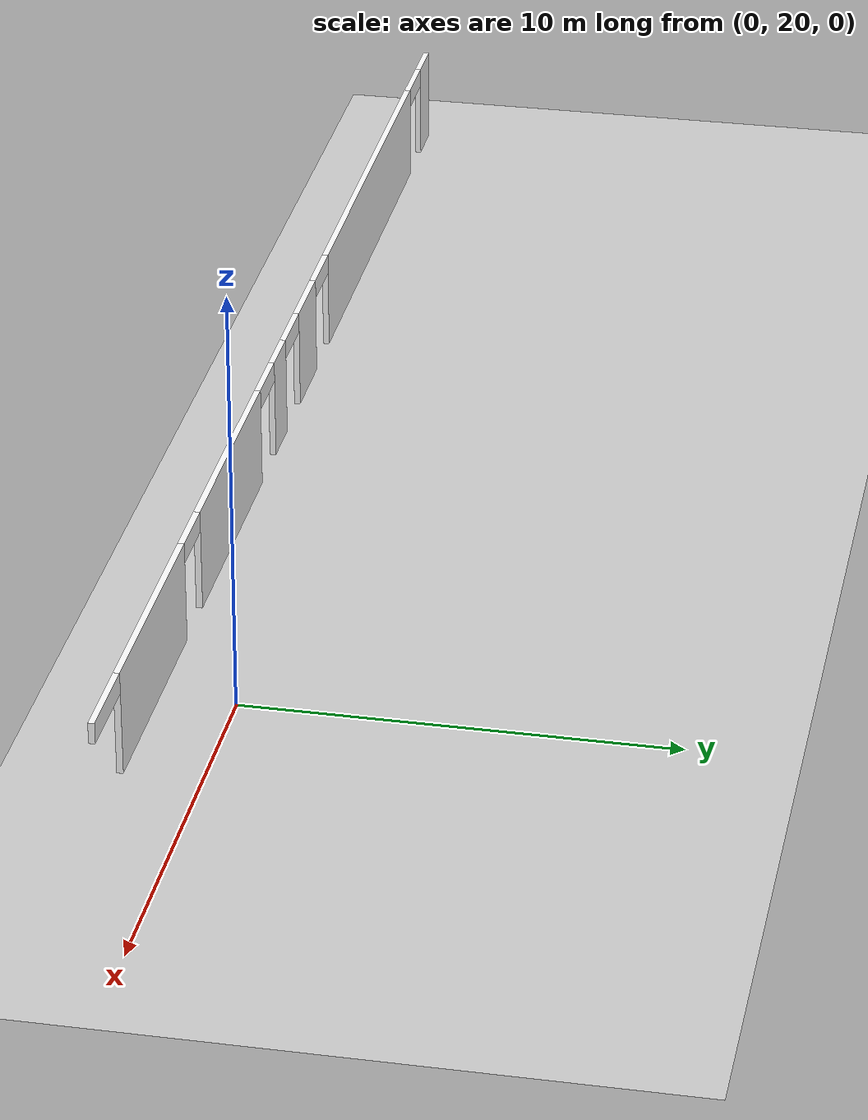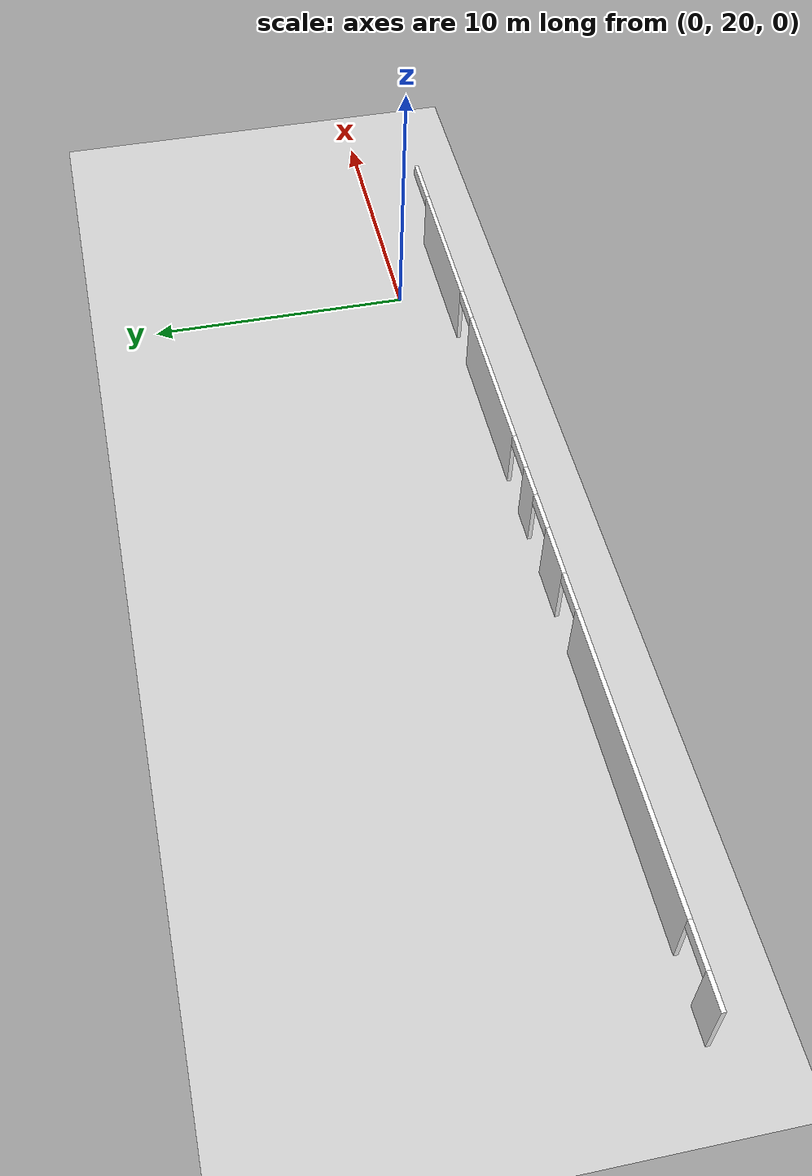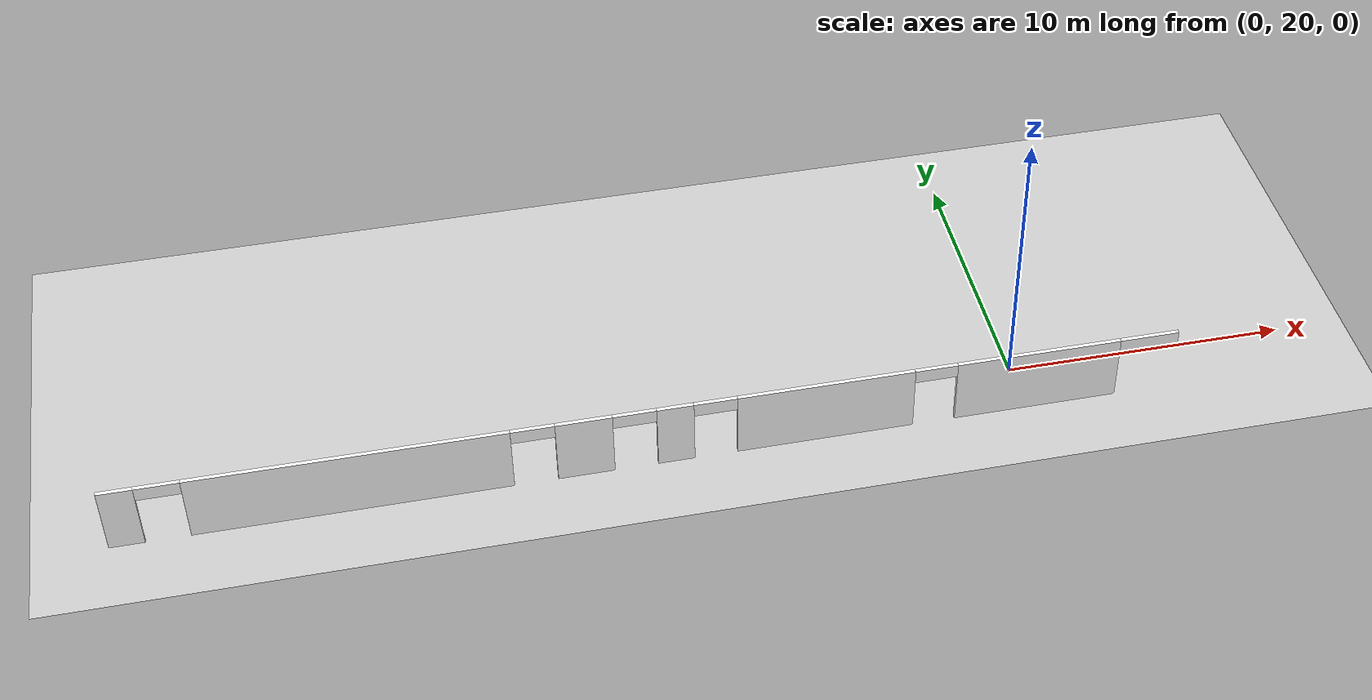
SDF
<sdf version="1.6">
 <world name="default">
  <model name="ground_plane">
   <static>1</static>
   <link name="link">
    <collision name="collision">
     <geometry><plane><normal>0 0 1</normal><size>100 100</size></plane></geometry>
     <surface><friction><ode><mu>100</mu><mu2>50</mu2></ode></friction></surface>
    </collision>
    <visual name="visual">
     <cast_shadows>0</cast_shadows>
     <geometry><plane><normal>0 0 1</normal><size>100 100</size></plane></geometry>
     <material>
      <script>
       <uri>model://office_env/materials/scripts</uri>
       <uri>model://office_env/materials/textures</uri>
       <name>wall</name>
      </script>
     </material>
    </visual>
   </link>
  </model>
  <model name="aule_N">
   <pose>0.1887 -1.4289 0 0 -0 0</pose>
   <link name="Wall_117">
    <pose>-13.2274 19.6001 0 0 -0 0</pose>
    <visual name="Wall_117_Visual_0">
     <pose>-17.7796 0 1.25 0 -0 0</pose>
     <geometry><box><size>1.19077 0.15 2.5</size></box></geometry>
     <material>
      <script>
       <uri>model://office_env/materials/scripts</uri>
       <uri>model://office_env/materials/textures</uri>
       <name>wall</name>
      </script>
      <ambient>1 1 1 1</ambient>
     </material>
    </visual>
    <collision name="Wall_117_Collision_0">
     <geometry><box><size>1.19077 0.15 2.5</size></box></geometry>
     <pose>-17.7796 0 1.25 0 -0 0</pose>
    </collision>
    <visual name="Wall_117_Visual_1">
     <pose>-10.3016 0 1.25 0 -0 0</pose>
     <geometry><box><size>10.7652 0.15 2.5</size></box></geometry>
     <material>
      <script>
       <uri>model://office_env/materials/scripts</uri>
       <uri>model://office_env/materials/textures</uri>
       <name>wall</name>
      </script>
      <ambient>1 1 1 1</ambient>
     </material>
    </visual>
    <collision name="Wall_117_Collision_1">
     <geometry><box><size>10.7652 0.15 2.5</size></box></geometry>
     <pose>-10.3016 0 1.25 0 -0 0</pose>
    </collision>
    <visual name="Wall_117_Visual_2">
     <pose>-2.44962 0 1.25 0 -0 0</pose>
     <geometry><box><size>1.93872 0.15 2.5</size></box></geometry>
     <material>
      <script>
       <uri>model://office_env/materials/scripts</uri>
       <uri>model://office_env/materials/textures</uri>
       <name>wall</name>
      </script>
      <ambient>1 1 1 1</ambient>
     </material>
    </visual>
    <collision name="Wall_117_Collision_2">
     <geometry><box><size>1.93872 0.15 2.5</size></box></geometry>
     <pose>-2.44962 0 1.25 0 -0 0</pose>
    </collision>
    <visual name="Wall_117_Visual_3">
     <pose>0.6526 0 1.25 0 -0 0</pose>
     <geometry><box><size>1.26572 0.15 2.5</size></box></geometry>
     <material>
      <script>
       <uri>model://office_env/materials/scripts</uri>
       <uri>model://office_env/materials/textures</uri>
       <name>wall</name>
      </script>
      <ambient>1 1 1 1</ambient>
     </material>
    </visual>
    <collision name="Wall_117_Collision_3">
     <geometry><box><size>1.26572 0.15 2.5</size></box></geometry>
     <pose>0.6526 0 1.25 0 -0 0</pose>
    </collision>
    <visual name="Wall_117_Visual_4">
     <pose>5.87513 0 1.25 0 -0 0</pose>
     <geometry><box><size>6.17934 0.15 2.5</size></box></geometry>
     <material>
      <script>
       <uri>model://office_env/materials/scripts</uri>
       <uri>model://office_env/materials/textures</uri>
       <name>wall</name>
      </script>
      <ambient>1 1 1 1</ambient>
     </material>
    </visual>
    <collision name="Wall_117_Collision_4">
     <geometry><box><size>6.17934 0.15 2.5</size></box></geometry>
     <pose>5.87513 0 1.25 0 -0 0</pose>
    </collision>
    <visual name="Wall_117_Visual_5">
     <pose>13.3706 0 1.25 0 -0 0</pose>
     <geometry><box><size>5.81158 0.15 2.5</size></box></geometry>
     <material>
      <script>
       <uri>model://office_env/materials/scripts</uri>
       <uri>model://office_env/materials/textures</uri>
       <name>wall</name>
      </script>
      <ambient>1 1 1 1</ambient>
     </material>
    </visual>
    <collision name="Wall_117_Collision_5">
     <geometry><box><size>5.81158 0.15 2.5</size></box></geometry>
     <pose>13.3706 0 1.25 0 -0 0</pose>
    </collision>
    <visual name="Wall_117_Visual_6">
     <pose>-16.4342 0 2.25 0 -0 0</pose>
     <geometry><box><size>1.5 0.15 0.5</size></box></geometry>
     <material>
      <script>
       <uri>model://office_env/materials/scripts</uri>
       <uri>model://office_env/materials/textures</uri>
       <name>wall</name>
      </script>
      <ambient>1 1 1 1</ambient>
     </material>
    </visual>
    <collision name="Wall_117_Collision_6">
     <geometry><box><size>1.5 0.15 0.5</size></box></geometry>
     <pose>-16.4342 0 2.25 0 -0 0</pose>
    </collision>
    <visual name="Wall_117_Visual_7">
     <pose>-4.16898 0 2.25 0 -0 0</pose>
     <geometry><box><size>1.5 0.15 0.5</size></box></geometry>
     <material>
      <script>
       <uri>model://office_env/materials/scripts</uri>
       <uri>model://office_env/materials/textures</uri>
       <name>wall</name>
      </script>
      <ambient>1 1 1 1</ambient>
     </material>
    </visual>
    <collision name="Wall_117_Collision_7">
     <geometry><box><size>1.5 0.15 0.5</size></box></geometry>
     <pose>-4.16898 0 2.25 0 -0 0</pose>
    </collision>
    <visual name="Wall_117_Visual_8">
     <pose>-0.73026 0 2.25 0 -0 0</pose>
     <geometry><box><size>1.5 0.15 0.5</size></box></geometry>
     <material>
      <script>
       <uri>model://office_env/materials/scripts</uri>
       <uri>model://office_env/materials/textures</uri>
       <name>wall</name>
      </script>
      <ambient>1 1 1 1</ambient>
     </material>
    </visual>
    <collision name="Wall_117_Collision_8">
     <geometry><box><size>1.5 0.15 0.5</size></box></geometry>
     <pose>-0.73026 0 2.25 0 -0 0</pose>
    </collision>
    <visual name="Wall_117_Visual_9">
     <pose>2.03546 0 2.25 0 -0 0</pose>
     <geometry><box><size>1.5 0.15 0.5</size></box></geometry>
     <material>
      <script>
       <uri>model://office_env/materials/scripts</uri>
       <uri>model://office_env/materials/textures</uri>
       <name>wall</name>
      </script>
      <ambient>1 1 1 1</ambient>
     </material>
    </visual>
    <collision name="Wall_117_Collision_9">
     <geometry><box><size>1.5 0.15 0.5</size></box></geometry>
     <pose>2.03546 0 2.25 0 -0 0</pose>
    </collision>
    <visual name="Wall_117_Visual_10">
     <pose>9.7148 0 2.25 0 -0 0</pose>
     <geometry><box><size>1.5 0.15 0.5</size></box></geometry>
     <material>
      <script>
       <uri>model://office_env/materials/scripts</uri>
       <uri>model://office_env/materials/textures</uri>
       <name>wall</name>
      </script>
      <ambient>1 1 1 1</ambient>
     </material>
    </visual>
    <collision name="Wall_117_Collision_10">
     <geometry><box><size>1.5 0.15 0.5</size></box></geometry>
     <pose>9.7148 0 2.25 0 -0 0</pose>
    </collision>
    <visual name="Wall_117_Visual_11">
     <pose>17.3257 0 2.25 0 -0 0</pose>
     <geometry><box><size>2.09862 0.15 0.5</size></box></geometry>
     <material>
      <script>
       <uri>model://office_env/materials/scripts</uri>
       <uri>model://office_env/materials/textures</uri>
       <name>wall</name>
      </script>
      <ambient>1 1 1 1</ambient>
     </material>
    </visual>
    <collision name="Wall_117_Collision_11">
     <geometry><box><size>2.09862 0.15 0.5</size></box></geometry>
     <pose>17.3257 0 2.25 0 -0 0</pose>
    </collision>
   </link>
   <static>1</static>
  </model>
 </world>
</sdf>
